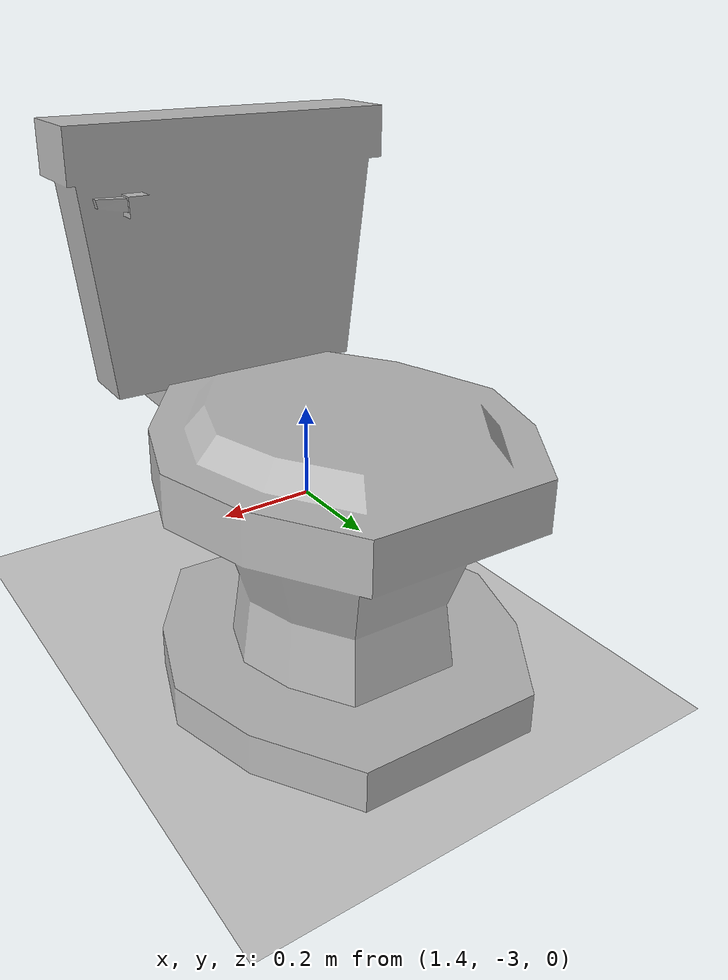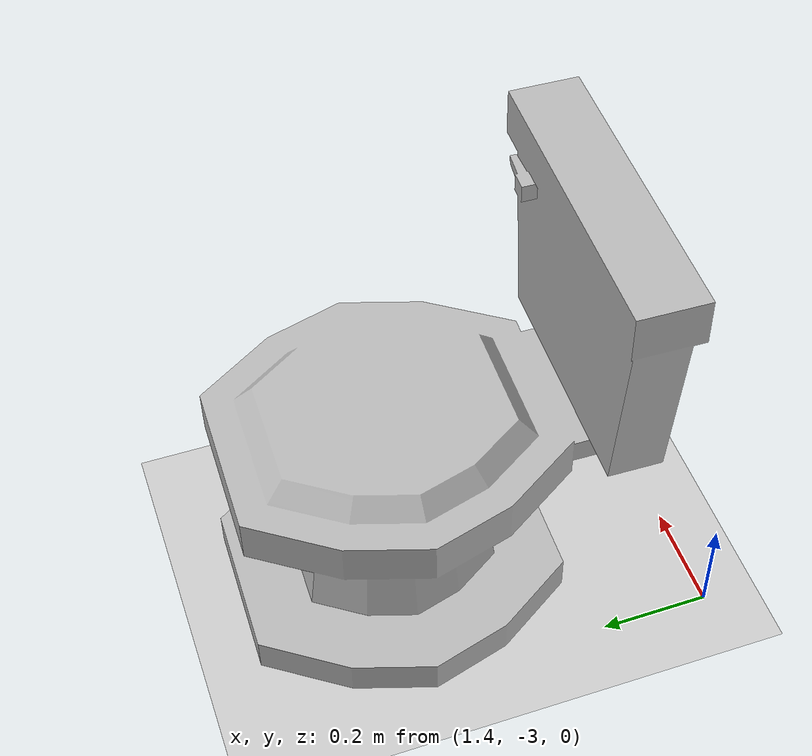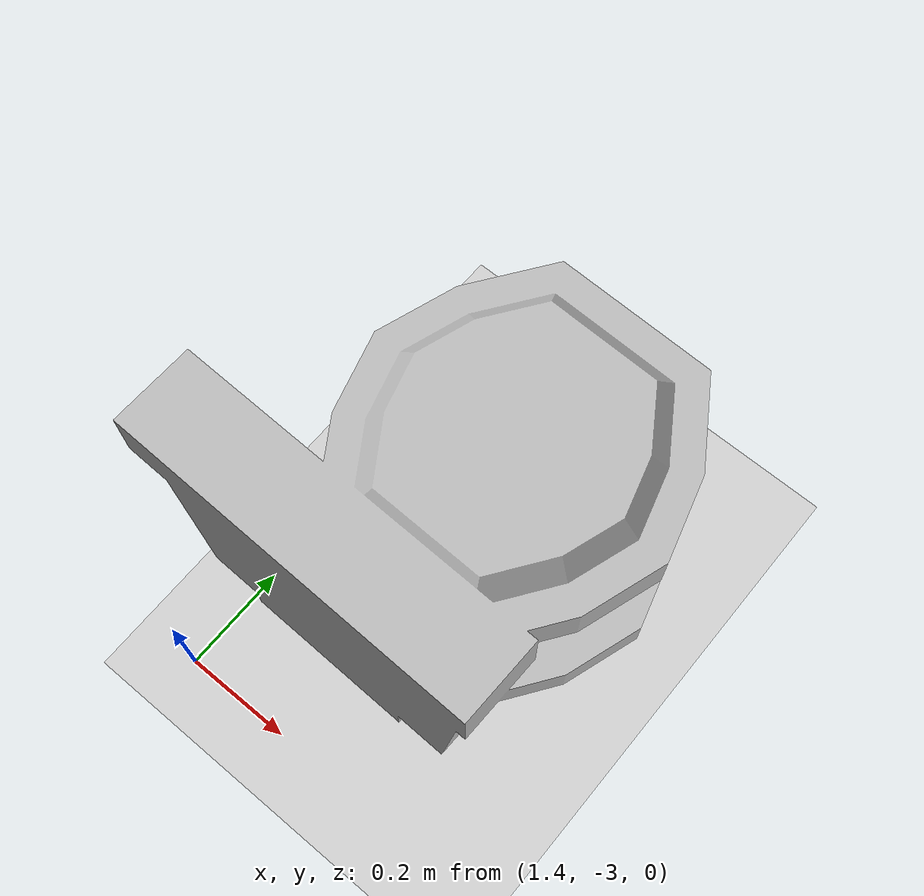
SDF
<sdf version="1.6">
 <world name="default">
  <light name="sun" type="directional">
   <pose>0 0 10 0 -0 0</pose>
   <diffuse>0.8 0.8 0.8 1</diffuse>
   <specular>0.2 0.2 0.2 1</specular>
   <attenuation>
    <range>1000</range>
    <constant>0.9</constant>
    <linear>0.01</linear>
    <quadratic>0.001</quadratic>
   </attenuation>
   <direction>-0.5 0.1 -0.9</direction>
  </light>
  <model name="ground_plane">
   <static>1</static>
   <link name="link">
    <collision name="collision">
     <geometry><plane><normal>0 0 1</normal><size>100 100</size></plane></geometry>
     <surface><friction><ode><mu>100</mu><mu2>50</mu2></ode></friction></surface>
    </collision>
    <visual name="visual">
     <cast_shadows>0</cast_shadows>
     <geometry><plane><normal>0 0 1</normal><size>100 100</size></plane></geometry>
     <material>
      <script><uri>file://media/materials/scripts/gazebo.material</uri><name>Gazebo/Grey</name></script>
     </material>
    </visual>
   </link>
  </model>
  <gravity>0 0 -9.8</gravity>
  <magnetic_field>6e-06 2.3e-05 -4.2e-05</magnetic_field>
  <atmosphere type="adiabatic"/>
  <physics name="default_physics" default="0" type="ode">
   <max_step_size>0.001</max_step_size>
   <real_time_factor>1</real_time_factor>
   <real_time_update_rate>1000</real_time_update_rate>
  </physics>
  <scene><ambient>0.4 0.4 0.4 1</ambient><background>0.7 0.7 0.7 1</background><shadows>1</shadows></scene>
  <spherical_coordinates>
   <surface_model>EARTH_WGS84</surface_model>
   <latitude_deg>0</latitude_deg>
   <longitude_deg>0</longitude_deg>
   <elevation>0</elevation>
   <heading_deg>0</heading_deg>
  </spherical_coordinates>
  <model name="Toilet">
   <link name="body">
    <visual name="visual">
     <geometry><mesh><uri>model://Toilet/meshes/toilet.obj</uri><scale>1.75 1.75 1.75</scale></mesh></geometry>
    </visual>
    <collision name="collision">
     <geometry><mesh><uri>model://Toilet/meshes/toilet.obj</uri><scale>1.75 1.75 1.75</scale></mesh></geometry>
    </collision>
    <inertial>
     <inertia><ixx>1</ixx><ixy>0</ixy><ixz>0</ixz><iyy>1</iyy><iyz>0</iyz><izz>1</izz></inertia>
     <mass>1</mass>
    </inertial>
   </link>
   <pose>1.67202 -2.47611 0.000387 0 -0 1.54848</pose>
  </model>
 </world>
</sdf>
